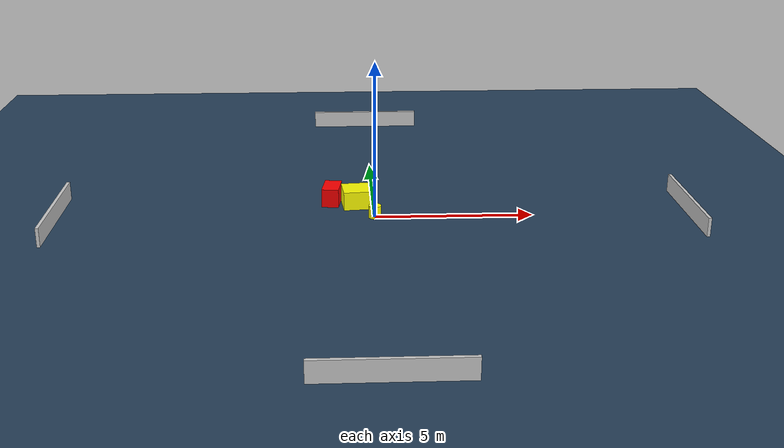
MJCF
<?xml version="1.0" ?>
<mujoco model="generated_environment">
  <option timestep="0.01" integrator="RK4" cone="elliptic"/>
  <default>
    <geom density="1"/>
  </default>
  <asset>
    <texture builtin="gradient" height="3072" name="skybox" rgb1="0.3 0.5 0.7" rgb2="0 0 0" type="skybox" width="512"/>
    <texture builtin="checker" height="300" name="groundplane" rgb1="0.2 0.3 0.4" rgb2="0.1 0.2 0.3" type="2d" width="300"/>
    <material name="groundplane" reflectance="0.2" texrepeat="5 5" texture="groundplane"/>
  </asset>
  <worldbody>
    <light dir="0 0 -1" directional="true" pos="0 0 1.5"/>
    <geom condim="3" friction="0.5 0.005 0.001" material="groundplane" name="floor" pos="0 0 0" size="0 0 0.05" type="plane"/>
    <body name="walls">
      <geom name="wall_1" condim="4" pos="-10.0 0.0 0.3" rgba="0.800000011920929 0.800000011920929 0.800000011920929 1.0" size="0.05 2.0 0.3" type="box"/>
      <geom name="wall_2" condim="4" pos="10.0 0.0 0.3" rgba="0.800000011920929 0.800000011920929 0.800000011920929 1.0" size="0.05 2.0 0.3" type="box"/>
      <geom name="wall_3" condim="4" pos="0.0 -10.0 0.3" rgba="0.800000011920929 0.800000011920929 0.800000011920929 1.0" size="2.0 0.05 0.3" type="box"/>
      <geom name="wall_4" condim="4" pos="0.0 10.0 0.3" rgba="0.800000011920929 0.800000011920929 0.800000011920929 1.0" size="2.0 0.05 0.3" type="box"/>
    </body>
    <body name="robot">
      <joint name="joint_x" type="slide" pos="0 0 0" axis="1 0 0"/>
      <joint name="joint_y" type="slide" pos="0 0 0" axis="0 1 0"/>
      <geom name="robot" type="cylinder" pos="0.0 0.0 0.2" size="0.2 0.2 0.0" mass="5.0" friction="1.0 0.005 0.0001" condim="4" rgba="1.0 1.0 0.0 1.0"/>
    </body>
    <body name="obstacle_1_movable">
      <geom name="obstacle_1_movable" condim="4" pos="-0.5512274719062892 1.0838603820242072 0.3" euler="0 0 5.460511100556795" friction="0.0 0.005 0.001" rgba="1.0 1.0 0.0 1.0" size="0.45848835374688807 0.44449879461166136 0.3" type="box" mass="0.1"/>
      <joint type="free"/>
    </body>
    <body name="obstacle_2_static">
      <geom name="obstacle_2_static" condim="4" pos="-1.3517088576417653 1.3520321661384649 0.3" euler="0 0 172.39779866547912" friction="0.0 0.005 0.001" rgba="1.0 0.0 0.0 1.0" size="0.2752075891769431 0.45677896759181025 0.3" type="box"/>
    </body>
  </worldbody>
  <actuator>
    <motor name="actuator_x" joint="joint_x" gear="1" ctrlrange="-1 1"/>
    <motor name="actuator_y" joint="joint_y" gear="1" ctrlrange="-1 1"/>
  </actuator>
</mujoco>
